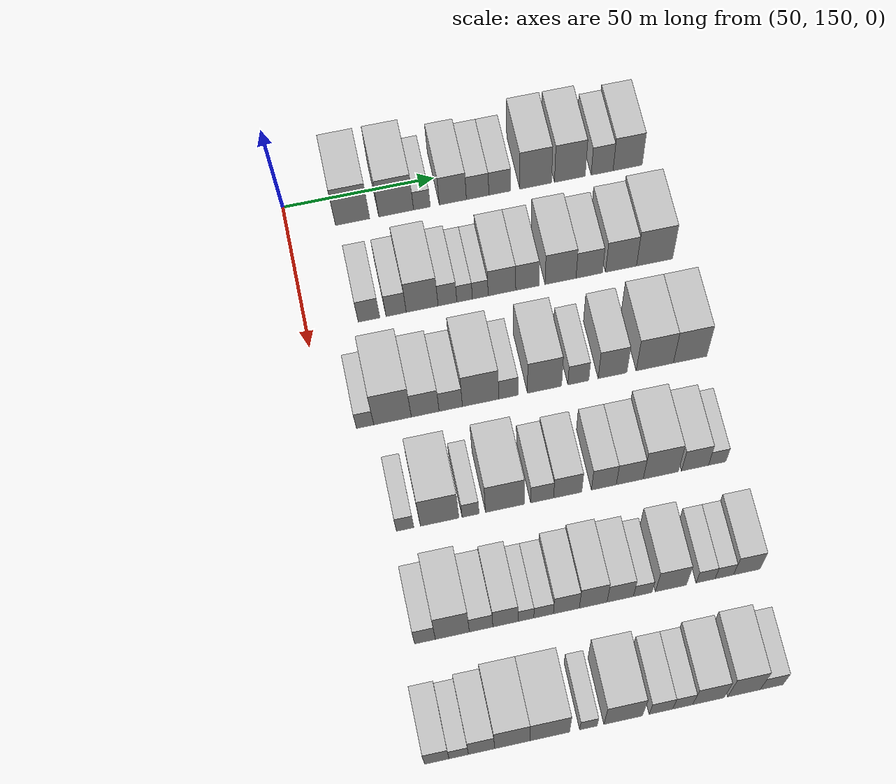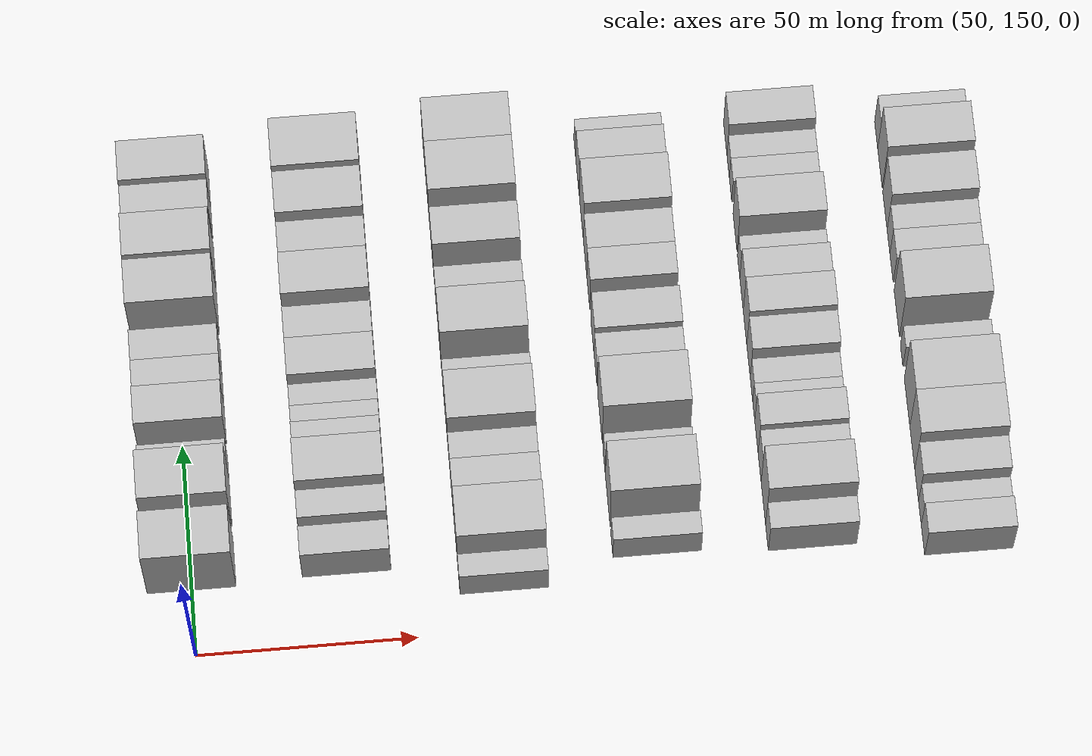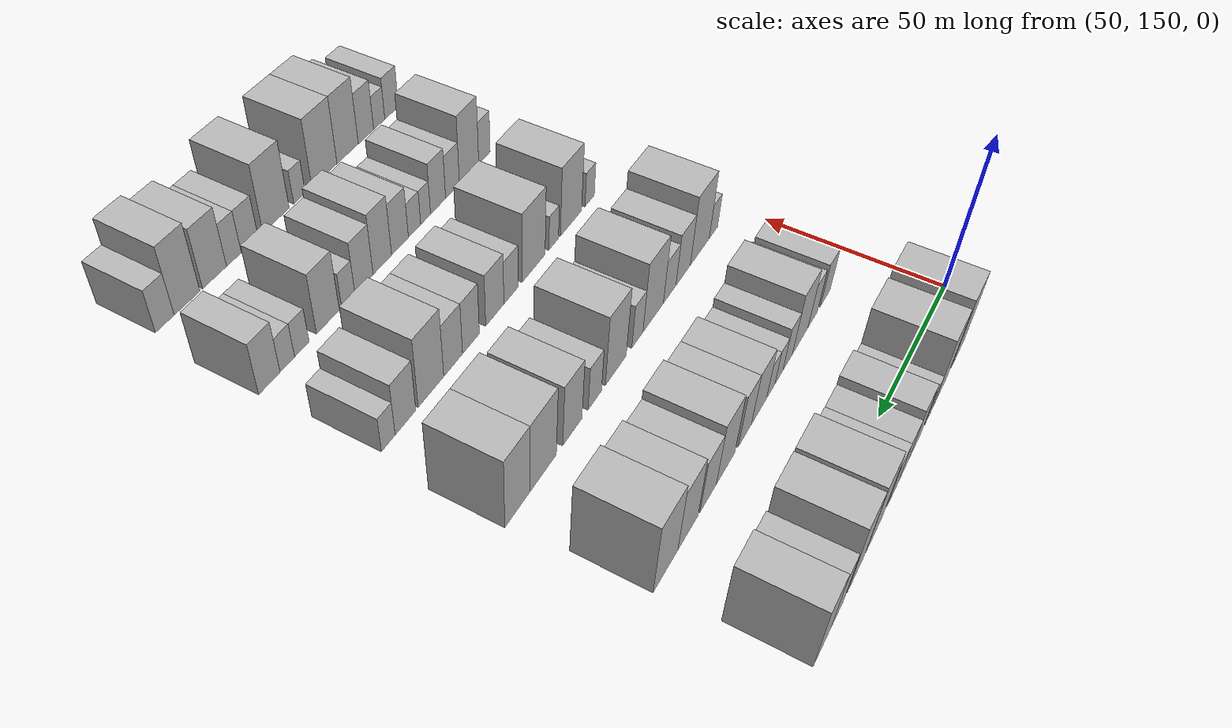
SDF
<sdf version="1.6">
 <world name="default">
  <model name="building_82">
   <static>1</static>
   <pose>50.0000 171.2162 0 0.000000 0.000000 0.000000</pose>
   <link name="link">
    <pose>0 0 12.00 0 0 0</pose>
    <collision name="collision"><geometry><box><size>20.0000 11.2243 24.0000</size></box></geometry></collision>
    <visual name="visual">
     <cast_shadows>0</cast_shadows>
     <geometry><box><size>20.0000 11.2243 24.0000</size></box></geometry>
     <material>
      <script>
       <uri>model://HANNAS_wall/materials/scripts</uri>
       <uri>model://HANNAS_wall/materials/textures</uri>
       <name>vrc/HANNAS_wall</name>
      </script>
     </material>
    </visual>
   </link>
  </model>
  <model name="building_83">
   <static>1</static>
   <pose>50.0000 185.5614 0 0.000000 0.000000 0.000000</pose>
   <link name="link">
    <pose>0 0 12.00 0 0 0</pose>
    <collision name="collision"><geometry><box><size>20.0000 11.4661 24.0000</size></box></geometry></collision>
    <visual name="visual">
     <cast_shadows>0</cast_shadows>
     <geometry><box><size>20.0000 11.4661 24.0000</size></box></geometry>
     <material>
      <script>
       <uri>model://HANNAS_wall/materials/scripts</uri>
       <uri>model://HANNAS_wall/materials/textures</uri>
       <name>vrc/HANNAS_wall</name>
      </script>
     </material>
    </visual>
   </link>
  </model>
  <model name="building_84">
   <static>1</static>
   <pose>50.0000 194.0511 0 0.000000 0.000000 0.000000</pose>
   <link name="link">
    <pose>0 0 6.00 0 0 0</pose>
    <collision name="collision"><geometry><box><size>20.0000 5.5132 12.0000</size></box></geometry></collision>
    <visual name="visual">
     <cast_shadows>0</cast_shadows>
     <geometry><box><size>20.0000 5.5132 12.0000</size></box></geometry>
     <material>
      <script>
       <uri>model://HANNAS_wall/materials/scripts</uri>
       <uri>model://HANNAS_wall/materials/textures</uri>
       <name>vrc/HANNAS_wall</name>
      </script>
     </material>
    </visual>
   </link>
  </model>
  <model name="building_85">
   <static>1</static>
   <pose>50.0000 204.2887 0 0.000000 0.000000 0.000000</pose>
   <link name="link">
    <pose>0 0 9.00 0 0 0</pose>
    <collision name="collision"><geometry><box><size>20.0000 8.9622 18.0000</size></box></geometry></collision>
    <visual name="visual">
     <cast_shadows>0</cast_shadows>
     <geometry><box><size>20.0000 8.9622 18.0000</size></box></geometry>
     <material>
      <script>
       <uri>model://HANNAS_wall/materials/scripts</uri>
       <uri>model://HANNAS_wall/materials/textures</uri>
       <name>vrc/HANNAS_wall</name>
      </script>
     </material>
    </visual>
   </link>
  </model>
  <model name="building_86">
   <static>1</static>
   <pose>50.0000 212.4985 0 0.000000 0.000000 0.000000</pose>
   <link name="link">
    <pose>0 0 7.50 0 0 0</pose>
    <collision name="collision"><geometry><box><size>20.0000 7.4574 15.0000</size></box></geometry></collision>
    <visual name="visual">
     <cast_shadows>0</cast_shadows>
     <geometry><box><size>20.0000 7.4574 15.0000</size></box></geometry>
     <material>
      <script>
       <uri>model://HANNAS_wall/materials/scripts</uri>
       <uri>model://HANNAS_wall/materials/textures</uri>
       <name>vrc/HANNAS_wall</name>
      </script>
     </material>
    </visual>
   </link>
  </model>
  <model name="building_87">
   <static>1</static>
   <pose>50.0000 219.8752 0 0.000000 0.000000 0.000000</pose>
   <link name="link">
    <pose>0 0 7.50 0 0 0</pose>
    <collision name="collision"><geometry><box><size>20.0000 7.2960 15.0000</size></box></geometry></collision>
    <visual name="visual">
     <cast_shadows>0</cast_shadows>
     <geometry><box><size>20.0000 7.2960 15.0000</size></box></geometry>
     <material>
      <script>
       <uri>model://HANNAS_wall/materials/scripts</uri>
       <uri>model://HANNAS_wall/materials/textures</uri>
       <name>vrc/HANNAS_wall</name>
      </script>
     </material>
    </visual>
   </link>
  </model>
  <model name="building_88">
   <static>1</static>
   <pose>50.0000 231.8130 0 0.000000 0.000000 0.000000</pose>
   <link name="link">
    <pose>0 0 12.00 0 0 0</pose>
    <collision name="collision"><geometry><box><size>20.0000 10.5794 24.0000</size></box></geometry></collision>
    <visual name="visual">
     <cast_shadows>0</cast_shadows>
     <geometry><box><size>20.0000 10.5794 24.0000</size></box></geometry>
     <material>
      <script>
       <uri>model://HANNAS_wall/materials/scripts</uri>
       <uri>model://HANNAS_wall/materials/textures</uri>
       <name>vrc/HANNAS_wall</name>
      </script>
     </material>
    </visual>
   </link>
  </model>
  <model name="building_89">
   <static>1</static>
   <pose>50.0000 243.2469 0 0.000000 0.000000 0.000000</pose>
   <link name="link">
    <pose>0 0 12.00 0 0 0</pose>
    <collision name="collision"><geometry><box><size>20.0000 10.2885 24.0000</size></box></geometry></collision>
    <visual name="visual">
     <cast_shadows>0</cast_shadows>
     <geometry><box><size>20.0000 10.2885 24.0000</size></box></geometry>
     <material>
      <script>
       <uri>model://HANNAS_wall/materials/scripts</uri>
       <uri>model://HANNAS_wall/materials/textures</uri>
       <name>vrc/HANNAS_wall</name>
      </script>
     </material>
    </visual>
   </link>
  </model>
  <model name="building_90">
   <static>1</static>
   <pose>50.0000 254.0702 0 0.000000 0.000000 0.000000</pose>
   <link name="link">
    <pose>0 0 9.00 0 0 0</pose>
    <collision name="collision"><geometry><box><size>20.0000 7.3580 18.0000</size></box></geometry></collision>
    <visual name="visual">
     <cast_shadows>0</cast_shadows>
     <geometry><box><size>20.0000 7.3580 18.0000</size></box></geometry>
     <material>
      <script>
       <uri>model://HANNAS_wall/materials/scripts</uri>
       <uri>model://HANNAS_wall/materials/textures</uri>
       <name>vrc/HANNAS_wall</name>
      </script>
     </material>
    </visual>
   </link>
  </model>
  <model name="building_91">
   <static>1</static>
   <pose>50.0000 262.6418 0 0.000000 0.000000 0.000000</pose>
   <link name="link">
    <pose>0 0 10.50 0 0 0</pose>
    <collision name="collision"><geometry><box><size>20.0000 9.7854 21.0000</size></box></geometry></collision>
    <visual name="visual">
     <cast_shadows>0</cast_shadows>
     <geometry><box><size>20.0000 9.7854 21.0000</size></box></geometry>
     <material>
      <script>
       <uri>model://HANNAS_wall/materials/scripts</uri>
       <uri>model://HANNAS_wall/materials/textures</uri>
       <name>vrc/HANNAS_wall</name>
      </script>
     </material>
    </visual>
   </link>
  </model>
  <model name="building_208">
   <static>1</static>
   <pose>85.0000 170.0266 0 0.000000 0.000000 0.000000</pose>
   <link name="link">
    <pose>0 0 7.50 0 0 0</pose>
    <collision name="collision"><geometry><box><size>20.0000 6.9414 15.0000</size></box></geometry></collision>
    <visual name="visual">
     <cast_shadows>0</cast_shadows>
     <geometry><box><size>20.0000 6.9414 15.0000</size></box></geometry>
     <material>
      <script>
       <uri>model://HANNAS_wall/materials/scripts</uri>
       <uri>model://HANNAS_wall/materials/textures</uri>
       <name>vrc/HANNAS_wall</name>
      </script>
     </material>
    </visual>
   </link>
  </model>
  <model name="building_209">
   <static>1</static>
   <pose>85.0000 178.7597 0 0.000000 0.000000 0.000000</pose>
   <link name="link">
    <pose>0 0 7.50 0 0 0</pose>
    <collision name="collision"><geometry><box><size>20.0000 6.5249 15.0000</size></box></geometry></collision>
    <visual name="visual">
     <cast_shadows>0</cast_shadows>
     <geometry><box><size>20.0000 6.5249 15.0000</size></box></geometry>
     <material>
      <script>
       <uri>model://HANNAS_wall/materials/scripts</uri>
       <uri>model://HANNAS_wall/materials/textures</uri>
       <name>vrc/HANNAS_wall</name>
      </script>
     </material>
    </visual>
   </link>
  </model>
  <model name="building_210">
   <static>1</static>
   <pose>85.0000 187.1684 0 0.000000 0.000000 0.000000</pose>
   <link name="link">
    <pose>0 0 10.50 0 0 0</pose>
    <collision name="collision"><geometry><box><size>20.0000 10.2925 21.0000</size></box></geometry></collision>
    <visual name="visual">
     <cast_shadows>0</cast_shadows>
     <geometry><box><size>20.0000 10.2925 21.0000</size></box></geometry>
     <material>
      <script>
       <uri>model://HANNAS_wall/materials/scripts</uri>
       <uri>model://HANNAS_wall/materials/textures</uri>
       <name>vrc/HANNAS_wall</name>
      </script>
     </material>
    </visual>
   </link>
  </model>
  <model name="building_211">
   <static>1</static>
   <pose>85.0000 195.3387 0 0.000000 0.000000 0.000000</pose>
   <link name="link">
    <pose>0 0 7.50 0 0 0</pose>
    <collision name="collision"><geometry><box><size>20.0000 6.0480 15.0000</size></box></geometry></collision>
    <visual name="visual">
     <cast_shadows>0</cast_shadows>
     <geometry><box><size>20.0000 6.0480 15.0000</size></box></geometry>
     <material>
      <script>
       <uri>model://HANNAS_wall/materials/scripts</uri>
       <uri>model://HANNAS_wall/materials/textures</uri>
       <name>vrc/HANNAS_wall</name>
      </script>
     </material>
    </visual>
   </link>
  </model>
  <model name="building_212">
   <static>1</static>
   <pose>85.0000 200.8754 0 0.000000 0.000000 0.000000</pose>
   <link name="link">
    <pose>0 0 6.00 0 0 0</pose>
    <collision name="collision"><geometry><box><size>20.0000 5.0254 12.0000</size></box></geometry></collision>
    <visual name="visual">
     <cast_shadows>0</cast_shadows>
     <geometry><box><size>20.0000 5.0254 12.0000</size></box></geometry>
     <material>
      <script>
       <uri>model://HANNAS_wall/materials/scripts</uri>
       <uri>model://HANNAS_wall/materials/textures</uri>
       <name>vrc/HANNAS_wall</name>
      </script>
     </material>
    </visual>
   </link>
  </model>
  <model name="building_213">
   <static>1</static>
   <pose>85.0000 205.9501 0 0.000000 0.000000 0.000000</pose>
   <link name="link">
    <pose>0 0 6.00 0 0 0</pose>
    <collision name="collision"><geometry><box><size>20.0000 5.1241 12.0000</size></box></geometry></collision>
    <visual name="visual">
     <cast_shadows>0</cast_shadows>
     <geometry><box><size>20.0000 5.1241 12.0000</size></box></geometry>
     <material>
      <script>
       <uri>model://HANNAS_wall/materials/scripts</uri>
       <uri>model://HANNAS_wall/materials/textures</uri>
       <name>vrc/HANNAS_wall</name>
      </script>
     </material>
    </visual>
   </link>
  </model>
  <model name="building_214">
   <static>1</static>
   <pose>85.0000 212.9996 0 0.000000 0.000000 0.000000</pose>
   <link name="link">
    <pose>0 0 9.00 0 0 0</pose>
    <collision name="collision"><geometry><box><size>20.0000 8.9749 18.0000</size></box></geometry></collision>
    <visual name="visual">
     <cast_shadows>0</cast_shadows>
     <geometry><box><size>20.0000 8.9749 18.0000</size></box></geometry>
     <material>
      <script>
       <uri>model://HANNAS_wall/materials/scripts</uri>
       <uri>model://HANNAS_wall/materials/textures</uri>
       <name>vrc/HANNAS_wall</name>
      </script>
     </material>
    </visual>
   </link>
  </model>
  <model name="building_215">
   <static>1</static>
   <pose>85.0000 221.2594 0 0.000000 0.000000 0.000000</pose>
   <link name="link">
    <pose>0 0 9.00 0 0 0</pose>
    <collision name="collision"><geometry><box><size>20.0000 7.5448 18.0000</size></box></geometry></collision>
    <visual name="visual">
     <cast_shadows>0</cast_shadows>
     <geometry><box><size>20.0000 7.5448 18.0000</size></box></geometry>
     <material>
      <script>
       <uri>model://HANNAS_wall/materials/scripts</uri>
       <uri>model://HANNAS_wall/materials/textures</uri>
       <name>vrc/HANNAS_wall</name>
      </script>
     </material>
    </visual>
   </link>
  </model>
  <model name="building_216">
   <static>1</static>
   <pose>85.0000 232.0993 0 0.000000 0.000000 0.000000</pose>
   <link name="link">
    <pose>0 0 10.50 0 0 0</pose>
    <collision name="collision"><geometry><box><size>20.0000 10.1349 21.0000</size></box></geometry></collision>
    <visual name="visual">
     <cast_shadows>0</cast_shadows>
     <geometry><box><size>20.0000 10.1349 21.0000</size></box></geometry>
     <material>
      <script>
       <uri>model://HANNAS_wall/materials/scripts</uri>
       <uri>model://HANNAS_wall/materials/textures</uri>
       <name>vrc/HANNAS_wall</name>
      </script>
     </material>
    </visual>
   </link>
  </model>
  <model name="building_217">
   <static>1</static>
   <pose>85.0000 241.4957 0 0.000000 0.000000 0.000000</pose>
   <link name="link">
    <pose>0 0 9.00 0 0 0</pose>
    <collision name="collision"><geometry><box><size>20.0000 8.6579 18.0000</size></box></geometry></collision>
    <visual name="visual">
     <cast_shadows>0</cast_shadows>
     <geometry><box><size>20.0000 8.6579 18.0000</size></box></geometry>
     <material>
      <script>
       <uri>model://HANNAS_wall/materials/scripts</uri>
       <uri>model://HANNAS_wall/materials/textures</uri>
       <name>vrc/HANNAS_wall</name>
      </script>
     </material>
    </visual>
   </link>
  </model>
  <model name="building_218">
   <static>1</static>
   <pose>85.0000 251.9202 0 0.000000 0.000000 0.000000</pose>
   <link name="link">
    <pose>0 0 10.50 0 0 0</pose>
    <collision name="collision"><geometry><box><size>20.0000 10.1911 21.0000</size></box></geometry></collision>
    <visual name="visual">
     <cast_shadows>0</cast_shadows>
     <geometry><box><size>20.0000 10.1911 21.0000</size></box></geometry>
     <material>
      <script>
       <uri>model://HANNAS_wall/materials/scripts</uri>
       <uri>model://HANNAS_wall/materials/textures</uri>
       <name>vrc/HANNAS_wall</name>
      </script>
     </material>
    </visual>
   </link>
  </model>
  <model name="building_219">
   <static>1</static>
   <pose>85.0000 262.9612 0 0.000000 0.000000 0.000000</pose>
   <link name="link">
    <pose>0 0 12.00 0 0 0</pose>
    <collision name="collision"><geometry><box><size>20.0000 11.8909 24.0000</size></box></geometry></collision>
    <visual name="visual">
     <cast_shadows>0</cast_shadows>
     <geometry><box><size>20.0000 11.8909 24.0000</size></box></geometry>
     <material>
      <script>
       <uri>model://HANNAS_wall/materials/scripts</uri>
       <uri>model://HANNAS_wall/materials/textures</uri>
       <name>vrc/HANNAS_wall</name>
      </script>
     </material>
    </visual>
   </link>
  </model>
  <model name="building_334">
   <static>1</static>
   <pose>120.0000 162.2347 0 0.000000 0.000000 0.000000</pose>
   <link name="link">
    <pose>0 0 6.00 0 0 0</pose>
    <collision name="collision"><geometry><box><size>20.0000 5.4271 12.0000</size></box></geometry></collision>
    <visual name="visual">
     <cast_shadows>0</cast_shadows>
     <geometry><box><size>20.0000 5.4271 12.0000</size></box></geometry>
     <material>
      <script>
       <uri>model://HANNAS_wall/materials/scripts</uri>
       <uri>model://HANNAS_wall/materials/textures</uri>
       <name>vrc/HANNAS_wall</name>
      </script>
     </material>
    </visual>
   </link>
  </model>
  <model name="building_335">
   <static>1</static>
   <pose>120.0000 170.8487 0 0.000000 0.000000 0.000000</pose>
   <link name="link">
    <pose>0 0 12.00 0 0 0</pose>
    <collision name="collision"><geometry><box><size>20.0000 11.8010 24.0000</size></box></geometry></collision>
    <visual name="visual">
     <cast_shadows>0</cast_shadows>
     <geometry><box><size>20.0000 11.8010 24.0000</size></box></geometry>
     <material>
      <script>
       <uri>model://HANNAS_wall/materials/scripts</uri>
       <uri>model://HANNAS_wall/materials/textures</uri>
       <name>vrc/HANNAS_wall</name>
      </script>
     </material>
    </visual>
   </link>
  </model>
  <model name="building_336">
   <static>1</static>
   <pose>120.0000 181.1348 0 0.000000 0.000000 0.000000</pose>
   <link name="link">
    <pose>0 0 9.00 0 0 0</pose>
    <collision name="collision"><geometry><box><size>20.0000 8.7712 18.0000</size></box></geometry></collision>
    <visual name="visual">
     <cast_shadows>0</cast_shadows>
     <geometry><box><size>20.0000 8.7712 18.0000</size></box></geometry>
     <material>
      <script>
       <uri>model://HANNAS_wall/materials/scripts</uri>
       <uri>model://HANNAS_wall/materials/textures</uri>
       <name>vrc/HANNAS_wall</name>
      </script>
     </material>
    </visual>
   </link>
  </model>
  <model name="building_337">
   <static>1</static>
   <pose>120.0000 189.1979 0 0.000000 0.000000 0.000000</pose>
   <link name="link">
    <pose>0 0 7.50 0 0 0</pose>
    <collision name="collision"><geometry><box><size>20.0000 7.3550 15.0000</size></box></geometry></collision>
    <visual name="visual">
     <cast_shadows>0</cast_shadows>
     <geometry><box><size>20.0000 7.3550 15.0000</size></box></geometry>
     <material>
      <script>
       <uri>model://HANNAS_wall/materials/scripts</uri>
       <uri>model://HANNAS_wall/materials/textures</uri>
       <name>vrc/HANNAS_wall</name>
      </script>
     </material>
    </visual>
   </link>
  </model>
  <model name="building_338">
   <static>1</static>
   <pose>120.0000 198.6452 0 0.000000 0.000000 0.000000</pose>
   <link name="link">
    <pose>0 0 12.00 0 0 0</pose>
    <collision name="collision"><geometry><box><size>20.0000 11.5395 24.0000</size></box></geometry></collision>
    <visual name="visual">
     <cast_shadows>0</cast_shadows>
     <geometry><box><size>20.0000 11.5395 24.0000</size></box></geometry>
     <material>
      <script>
       <uri>model://HANNAS_wall/materials/scripts</uri>
       <uri>model://HANNAS_wall/materials/textures</uri>
       <name>vrc/HANNAS_wall</name>
      </script>
     </material>
    </visual>
   </link>
  </model>
  <model name="building_339">
   <static>1</static>
   <pose>120.0000 207.4581 0 0.000000 0.000000 0.000000</pose>
   <link name="link">
    <pose>0 0 7.50 0 0 0</pose>
    <collision name="collision"><geometry><box><size>20.0000 6.0863 15.0000</size></box></geometry></collision>
    <visual name="visual">
     <cast_shadows>0</cast_shadows>
     <geometry><box><size>20.0000 6.0863 15.0000</size></box></geometry>
     <material>
      <script>
       <uri>model://HANNAS_wall/materials/scripts</uri>
       <uri>model://HANNAS_wall/materials/textures</uri>
       <name>vrc/HANNAS_wall</name>
      </script>
     </material>
    </visual>
   </link>
  </model>
  <model name="building_340">
   <static>1</static>
   <pose>120.0000 218.9475 0 0.000000 0.000000 0.000000</pose>
   <link name="link">
    <pose>0 0 12.00 0 0 0</pose>
    <collision name="collision"><geometry><box><size>20.0000 10.8926 24.0000</size></box></geometry></collision>
    <visual name="visual">
     <cast_shadows>0</cast_shadows>
     <geometry><box><size>20.0000 10.8926 24.0000</size></box></geometry>
     <material>
      <script>
       <uri>model://HANNAS_wall/materials/scripts</uri>
       <uri>model://HANNAS_wall/materials/textures</uri>
       <name>vrc/HANNAS_wall</name>
      </script>
     </material>
    </visual>
   </link>
  </model>
  <model name="building_341">
   <static>1</static>
   <pose>120.0000 229.7397 0 0.000000 0.000000 0.000000</pose>
   <link name="link">
    <pose>0 0 7.50 0 0 0</pose>
    <collision name="collision"><geometry><box><size>20.0000 6.6917 15.0000</size></box></geometry></collision>
    <visual name="visual">
     <cast_shadows>0</cast_shadows>
     <geometry><box><size>20.0000 6.6917 15.0000</size></box></geometry>
     <material>
      <script>
       <uri>model://HANNAS_wall/materials/scripts</uri>
       <uri>model://HANNAS_wall/materials/textures</uri>
       <name>vrc/HANNAS_wall</name>
      </script>
     </material>
    </visual>
   </link>
  </model>
  <model name="building_342">
   <static>1</static>
   <pose>120.0000 240.6907 0 0.000000 0.000000 0.000000</pose>
   <link name="link">
    <pose>0 0 10.50 0 0 0</pose>
    <collision name="collision"><geometry><box><size>20.0000 9.2102 21.0000</size></box></geometry></collision>
    <visual name="visual">
     <cast_shadows>0</cast_shadows>
     <geometry><box><size>20.0000 9.2102 21.0000</size></box></geometry>
     <material>
      <script>
       <uri>model://HANNAS_wall/materials/scripts</uri>
       <uri>model://HANNAS_wall/materials/textures</uri>
       <name>vrc/HANNAS_wall</name>
      </script>
     </material>
    </visual>
   </link>
  </model>
  <model name="building_343">
   <static>1</static>
   <pose>120.0000 254.2796 0 0.000000 0.000000 0.000000</pose>
   <link name="link">
    <pose>0 0 12.00 0 0 0</pose>
    <collision name="collision"><geometry><box><size>20.0000 11.9676 24.0000</size></box></geometry></collision>
    <visual name="visual">
     <cast_shadows>0</cast_shadows>
     <geometry><box><size>20.0000 11.9676 24.0000</size></box></geometry>
     <material>
      <script>
       <uri>model://HANNAS_wall/materials/scripts</uri>
       <uri>model://HANNAS_wall/materials/textures</uri>
       <name>vrc/HANNAS_wall</name>
      </script>
     </material>
    </visual>
   </link>
  </model>
  <model name="building_344">
   <static>1</static>
   <pose>120.0000 265.6564 0 0.000000 0.000000 0.000000</pose>
   <link name="link">
    <pose>0 0 12.00 0 0 0</pose>
    <collision name="collision"><geometry><box><size>20.0000 10.7861 24.0000</size></box></geometry></collision>
    <visual name="visual">
     <cast_shadows>0</cast_shadows>
     <geometry><box><size>20.0000 10.7861 24.0000</size></box></geometry>
     <material>
      <script>
       <uri>model://HANNAS_wall/materials/scripts</uri>
       <uri>model://HANNAS_wall/materials/textures</uri>
       <name>vrc/HANNAS_wall</name>
      </script>
     </material>
    </visual>
   </link>
  </model>
  <model name="building_464">
   <static>1</static>
   <pose>155.0000 167.9570 0 0.000000 0.000000 0.000000</pose>
   <link name="link">
    <pose>0 0 6.00 0 0 0</pose>
    <collision name="collision"><geometry><box><size>20.0000 5.3434 12.0000</size></box></geometry></collision>
    <visual name="visual">
     <cast_shadows>0</cast_shadows>
     <geometry><box><size>20.0000 5.3434 12.0000</size></box></geometry>
     <material>
      <script>
       <uri>model://HANNAS_wall/materials/scripts</uri>
       <uri>model://HANNAS_wall/materials/textures</uri>
       <name>vrc/HANNAS_wall</name>
      </script>
     </material>
    </visual>
   </link>
  </model>
  <model name="building_465">
   <static>1</static>
   <pose>155.0000 178.5574 0 0.000000 0.000000 0.000000</pose>
   <link name="link">
    <pose>0 0 12.00 0 0 0</pose>
    <collision name="collision"><geometry><box><size>20.0000 11.8574 24.0000</size></box></geometry></collision>
    <visual name="visual">
     <cast_shadows>0</cast_shadows>
     <geometry><box><size>20.0000 11.8574 24.0000</size></box></geometry>
     <material>
      <script>
       <uri>model://HANNAS_wall/materials/scripts</uri>
       <uri>model://HANNAS_wall/materials/textures</uri>
       <name>vrc/HANNAS_wall</name>
      </script>
     </material>
    </visual>
   </link>
  </model>
  <model name="building_466">
   <static>1</static>
   <pose>155.0000 188.1067 0 0.000000 0.000000 0.000000</pose>
   <link name="link">
    <pose>0 0 6.00 0 0 0</pose>
    <collision name="collision"><geometry><box><size>20.0000 5.2412 12.0000</size></box></geometry></collision>
    <visual name="visual">
     <cast_shadows>0</cast_shadows>
     <geometry><box><size>20.0000 5.2412 12.0000</size></box></geometry>
     <material>
      <script>
       <uri>model://HANNAS_wall/materials/scripts</uri>
       <uri>model://HANNAS_wall/materials/textures</uri>
       <name>vrc/HANNAS_wall</name>
      </script>
     </material>
    </visual>
   </link>
  </model>
  <model name="building_467">
   <static>1</static>
   <pose>155.0000 198.7268 0 0.000000 0.000000 0.000000</pose>
   <link name="link">
    <pose>0 0 12.00 0 0 0</pose>
    <collision name="collision"><geometry><box><size>20.0000 11.9990 24.0000</size></box></geometry></collision>
    <visual name="visual">
     <cast_shadows>0</cast_shadows>
     <geometry><box><size>20.0000 11.9990 24.0000</size></box></geometry>
     <material>
      <script>
       <uri>model://HANNAS_wall/materials/scripts</uri>
       <uri>model://HANNAS_wall/materials/textures</uri>
       <name>vrc/HANNAS_wall</name>
      </script>
     </material>
    </visual>
   </link>
  </model>
  <model name="building_468">
   <static>1</static>
   <pose>155.0000 210.2907 0 0.000000 0.000000 0.000000</pose>
   <link name="link">
    <pose>0 0 7.50 0 0 0</pose>
    <collision name="collision"><geometry><box><size>20.0000 7.1289 15.0000</size></box></geometry></collision>
    <visual name="visual">
     <cast_shadows>0</cast_shadows>
     <geometry><box><size>20.0000 7.1289 15.0000</size></box></geometry>
     <material>
      <script>
       <uri>model://HANNAS_wall/materials/scripts</uri>
       <uri>model://HANNAS_wall/materials/textures</uri>
       <name>vrc/HANNAS_wall</name>
      </script>
     </material>
    </visual>
   </link>
  </model>
  <model name="building_469">
   <static>1</static>
   <pose>155.0000 218.2522 0 0.000000 0.000000 0.000000</pose>
   <link name="link">
    <pose>0 0 9.00 0 0 0</pose>
    <collision name="collision"><geometry><box><size>20.0000 8.7942 18.0000</size></box></geometry></collision>
    <visual name="visual">
     <cast_shadows>0</cast_shadows>
     <geometry><box><size>20.0000 8.7942 18.0000</size></box></geometry>
     <material>
      <script>
       <uri>model://HANNAS_wall/materials/scripts</uri>
       <uri>model://HANNAS_wall/materials/textures</uri>
       <name>vrc/HANNAS_wall</name>
      </script>
     </material>
    </visual>
   </link>
  </model>
  <model name="building_470">
   <static>1</static>
   <pose>155.0000 229.5432 0 0.000000 0.000000 0.000000</pose>
   <link name="link">
    <pose>0 0 9.00 0 0 0</pose>
    <collision name="collision"><geometry><box><size>20.0000 7.7878 18.0000</size></box></geometry></collision>
    <visual name="visual">
     <cast_shadows>0</cast_shadows>
     <geometry><box><size>20.0000 7.7878 18.0000</size></box></geometry>
     <material>
      <script>
       <uri>model://HANNAS_wall/materials/scripts</uri>
       <uri>model://HANNAS_wall/materials/textures</uri>
       <name>vrc/HANNAS_wall</name>
      </script>
     </material>
    </visual>
   </link>
  </model>
  <model name="building_471">
   <static>1</static>
   <pose>155.0000 237.6557 0 0.000000 0.000000 0.000000</pose>
   <link name="link">
    <pose>0 0 9.00 0 0 0</pose>
    <collision name="collision"><geometry><box><size>20.0000 8.4373 18.0000</size></box></geometry></collision>
    <visual name="visual">
     <cast_shadows>0</cast_shadows>
     <geometry><box><size>20.0000 8.4373 18.0000</size></box></geometry>
     <material>
      <script>
       <uri>model://HANNAS_wall/materials/scripts</uri>
       <uri>model://HANNAS_wall/materials/textures</uri>
       <name>vrc/HANNAS_wall</name>
      </script>
     </material>
    </visual>
   </link>
  </model>
  <model name="building_472">
   <static>1</static>
   <pose>155.0000 247.3996 0 0.000000 0.000000 0.000000</pose>
   <link name="link">
    <pose>0 0 12.00 0 0 0</pose>
    <collision name="collision"><geometry><box><size>20.0000 11.0504 24.0000</size></box></geometry></collision>
    <visual name="visual">
     <cast_shadows>0</cast_shadows>
     <geometry><box><size>20.0000 11.0504 24.0000</size></box></geometry>
     <material>
      <script>
       <uri>model://HANNAS_wall/materials/scripts</uri>
       <uri>model://HANNAS_wall/materials/textures</uri>
       <name>vrc/HANNAS_wall</name>
      </script>
     </material>
    </visual>
   </link>
  </model>
  <model name="building_473">
   <static>1</static>
   <pose>155.0000 258.1891 0 0.000000 0.000000 0.000000</pose>
   <link name="link">
    <pose>0 0 9.00 0 0 0</pose>
    <collision name="collision"><geometry><box><size>20.0000 8.5286 18.0000</size></box></geometry></collision>
    <visual name="visual">
     <cast_shadows>0</cast_shadows>
     <geometry><box><size>20.0000 8.5286 18.0000</size></box></geometry>
     <material>
      <script>
       <uri>model://HANNAS_wall/materials/scripts</uri>
       <uri>model://HANNAS_wall/materials/textures</uri>
       <name>vrc/HANNAS_wall</name>
      </script>
     </material>
    </visual>
   </link>
  </model>
  <model name="building_474">
   <static>1</static>
   <pose>155.0000 265.2137 0 0.000000 0.000000 0.000000</pose>
   <link name="link">
    <pose>0 0 6.00 0 0 0</pose>
    <collision name="collision"><geometry><box><size>20.0000 5.5206 12.0000</size></box></geometry></collision>
    <visual name="visual">
     <cast_shadows>0</cast_shadows>
     <geometry><box><size>20.0000 5.5206 12.0000</size></box></geometry>
     <material>
      <script>
       <uri>model://HANNAS_wall/materials/scripts</uri>
       <uri>model://HANNAS_wall/materials/textures</uri>
       <name>vrc/HANNAS_wall</name>
      </script>
     </material>
    </visual>
   </link>
  </model>
  <model name="building_595">
   <static>1</static>
   <pose>190.0000 167.0574 0 0.000000 0.000000 0.000000</pose>
   <link name="link">
    <pose>0 0 7.50 0 0 0</pose>
    <collision name="collision"><geometry><box><size>20.0000 6.2252 15.0000</size></box></geometry></collision>
    <visual name="visual">
     <cast_shadows>0</cast_shadows>
     <geometry><box><size>20.0000 6.2252 15.0000</size></box></geometry>
     <material>
      <script>
       <uri>model://HANNAS_wall/materials/scripts</uri>
       <uri>model://HANNAS_wall/materials/textures</uri>
       <name>vrc/HANNAS_wall</name>
      </script>
     </material>
    </visual>
   </link>
  </model>
  <model name="building_596">
   <static>1</static>
   <pose>190.0000 175.2744 0 0.000000 0.000000 0.000000</pose>
   <link name="link">
    <pose>0 0 12.00 0 0 0</pose>
    <collision name="collision"><geometry><box><size>20.0000 10.2089 24.0000</size></box></geometry></collision>
    <visual name="visual">
     <cast_shadows>0</cast_shadows>
     <geometry><box><size>20.0000 10.2089 24.0000</size></box></geometry>
     <material>
      <script>
       <uri>model://HANNAS_wall/materials/scripts</uri>
       <uri>model://HANNAS_wall/materials/textures</uri>
       <name>vrc/HANNAS_wall</name>
      </script>
     </material>
    </visual>
   </link>
  </model>
  <model name="building_597">
   <static>1</static>
   <pose>190.0000 183.9313 0 0.000000 0.000000 0.000000</pose>
   <link name="link">
    <pose>0 0 7.50 0 0 0</pose>
    <collision name="collision"><geometry><box><size>20.0000 7.1048 15.0000</size></box></geometry></collision>
    <visual name="visual">
     <cast_shadows>0</cast_shadows>
     <geometry><box><size>20.0000 7.1048 15.0000</size></box></geometry>
     <material>
      <script>
       <uri>model://HANNAS_wall/materials/scripts</uri>
       <uri>model://HANNAS_wall/materials/textures</uri>
       <name>vrc/HANNAS_wall</name>
      </script>
     </material>
    </visual>
   </link>
  </model>
  <model name="building_598">
   <static>1</static>
   <pose>190.0000 191.2690 0 0.000000 0.000000 0.000000</pose>
   <link name="link">
    <pose>0 0 9.00 0 0 0</pose>
    <collision name="collision"><geometry><box><size>20.0000 7.5705 18.0000</size></box></geometry></collision>
    <visual name="visual">
     <cast_shadows>0</cast_shadows>
     <geometry><box><size>20.0000 7.5705 18.0000</size></box></geometry>
     <material>
      <script>
       <uri>model://HANNAS_wall/materials/scripts</uri>
       <uri>model://HANNAS_wall/materials/textures</uri>
       <name>vrc/HANNAS_wall</name>
      </script>
     </material>
    </visual>
   </link>
  </model>
  <model name="building_599">
   <static>1</static>
   <pose>190.0000 197.4596 0 0.000000 0.000000 0.000000</pose>
   <link name="link">
    <pose>0 0 6.00 0 0 0</pose>
    <collision name="collision"><geometry><box><size>20.0000 4.8108 12.0000</size></box></geometry></collision>
    <visual name="visual">
     <cast_shadows>0</cast_shadows>
     <geometry><box><size>20.0000 4.8108 12.0000</size></box></geometry>
     <material>
      <script>
       <uri>model://HANNAS_wall/materials/scripts</uri>
       <uri>model://HANNAS_wall/materials/textures</uri>
       <name>vrc/HANNAS_wall</name>
      </script>
     </material>
    </visual>
   </link>
  </model>
  <model name="building_600">
   <static>1</static>
   <pose>190.0000 202.8351 0 0.000000 0.000000 0.000000</pose>
   <link name="link">
    <pose>0 0 6.00 0 0 0</pose>
    <collision name="collision"><geometry><box><size>20.0000 5.9404 12.0000</size></box></geometry></collision>
    <visual name="visual">
     <cast_shadows>0</cast_shadows>
     <geometry><box><size>20.0000 5.9404 12.0000</size></box></geometry>
     <material>
      <script>
       <uri>model://HANNAS_wall/materials/scripts</uri>
       <uri>model://HANNAS_wall/materials/textures</uri>
       <name>vrc/HANNAS_wall</name>
      </script>
     </material>
    </visual>
   </link>
  </model>
  <model name="building_601">
   <static>1</static>
   <pose>190.0000 209.7483 0 0.000000 0.000000 0.000000</pose>
   <link name="link">
    <pose>0 0 9.00 0 0 0</pose>
    <collision name="collision"><geometry><box><size>20.0000 7.8859 18.0000</size></box></geometry></collision>
    <visual name="visual">
     <cast_shadows>0</cast_shadows>
     <geometry><box><size>20.0000 7.8859 18.0000</size></box></geometry>
     <material>
      <script>
       <uri>model://HANNAS_wall/materials/scripts</uri>
       <uri>model://HANNAS_wall/materials/textures</uri>
       <name>vrc/HANNAS_wall</name>
      </script>
     </material>
    </visual>
   </link>
  </model>
  <model name="building_602">
   <static>1</static>
   <pose>190.0000 217.9079 0 0.000000 0.000000 0.000000</pose>
   <link name="link">
    <pose>0 0 10.50 0 0 0</pose>
    <collision name="collision"><geometry><box><size>20.0000 8.4334 21.0000</size></box></geometry></collision>
    <visual name="visual">
     <cast_shadows>0</cast_shadows>
     <geometry><box><size>20.0000 8.4334 21.0000</size></box></geometry>
     <material>
      <script>
       <uri>model://HANNAS_wall/materials/scripts</uri>
       <uri>model://HANNAS_wall/materials/textures</uri>
       <name>vrc/HANNAS_wall</name>
      </script>
     </material>
    </visual>
   </link>
  </model>
  <model name="building_603">
   <static>1</static>
   <pose>190.0000 226.1650 0 0.000000 0.000000 0.000000</pose>
   <link name="link">
    <pose>0 0 9.00 0 0 0</pose>
    <collision name="collision"><geometry><box><size>20.0000 8.0808 18.0000</size></box></geometry></collision>
    <visual name="visual">
     <cast_shadows>0</cast_shadows>
     <geometry><box><size>20.0000 8.0808 18.0000</size></box></geometry>
     <material>
      <script>
       <uri>model://HANNAS_wall/materials/scripts</uri>
       <uri>model://HANNAS_wall/materials/textures</uri>
       <name>vrc/HANNAS_wall</name>
      </script>
     </material>
    </visual>
   </link>
  </model>
  <model name="building_604">
   <static>1</static>
   <pose>190.0000 233.0634 0 0.000000 0.000000 0.000000</pose>
   <link name="link">
    <pose>0 0 6.00 0 0 0</pose>
    <collision name="collision"><geometry><box><size>20.0000 5.7160 12.0000</size></box></geometry></collision>
    <visual name="visual">
     <cast_shadows>0</cast_shadows>
     <geometry><box><size>20.0000 5.7160 12.0000</size></box></geometry>
     <material>
      <script>
       <uri>model://HANNAS_wall/materials/scripts</uri>
       <uri>model://HANNAS_wall/materials/textures</uri>
       <name>vrc/HANNAS_wall</name>
      </script>
     </material>
    </visual>
   </link>
  </model>
  <model name="building_605">
   <static>1</static>
   <pose>190.0000 241.6877 0 0.000000 0.000000 0.000000</pose>
   <link name="link">
    <pose>0 0 10.50 0 0 0</pose>
    <collision name="collision"><geometry><box><size>20.0000 9.5325 21.0000</size></box></geometry></collision>
    <visual name="visual">
     <cast_shadows>0</cast_shadows>
     <geometry><box><size>20.0000 9.5325 21.0000</size></box></geometry>
     <material>
      <script>
       <uri>model://HANNAS_wall/materials/scripts</uri>
       <uri>model://HANNAS_wall/materials/textures</uri>
       <name>vrc/HANNAS_wall</name>
      </script>
     </material>
    </visual>
   </link>
  </model>
  <model name="building_606">
   <static>1</static>
   <pose>190.0000 252.3608 0 0.000000 0.000000 0.000000</pose>
   <link name="link">
    <pose>0 0 6.00 0 0 0</pose>
    <collision name="collision"><geometry><box><size>20.0000 5.8139 12.0000</size></box></geometry></collision>
    <visual name="visual">
     <cast_shadows>0</cast_shadows>
     <geometry><box><size>20.0000 5.8139 12.0000</size></box></geometry>
     <material>
      <script>
       <uri>model://HANNAS_wall/materials/scripts</uri>
       <uri>model://HANNAS_wall/materials/textures</uri>
       <name>vrc/HANNAS_wall</name>
      </script>
     </material>
    </visual>
   </link>
  </model>
  <model name="building_607">
   <static>1</static>
   <pose>190.0000 258.1185 0 0.000000 0.000000 0.000000</pose>
   <link name="link">
    <pose>0 0 6.00 0 0 0</pose>
    <collision name="collision"><geometry><box><size>20.0000 5.7015 12.0000</size></box></geometry></collision>
    <visual name="visual">
     <cast_shadows>0</cast_shadows>
     <geometry><box><size>20.0000 5.7015 12.0000</size></box></geometry>
     <material>
      <script>
       <uri>model://HANNAS_wall/materials/scripts</uri>
       <uri>model://HANNAS_wall/materials/textures</uri>
       <name>vrc/HANNAS_wall</name>
      </script>
     </material>
    </visual>
   </link>
  </model>
  <model name="building_608">
   <static>1</static>
   <pose>190.0000 265.0682 0 0.000000 0.000000 0.000000</pose>
   <link name="link">
    <pose>0 0 9.00 0 0 0</pose>
    <collision name="collision"><geometry><box><size>20.0000 8.1979 18.0000</size></box></geometry></collision>
    <visual name="visual">
     <cast_shadows>0</cast_shadows>
     <geometry><box><size>20.0000 8.1979 18.0000</size></box></geometry>
     <material>
      <script>
       <uri>model://HANNAS_wall/materials/scripts</uri>
       <uri>model://HANNAS_wall/materials/textures</uri>
       <name>vrc/HANNAS_wall</name>
      </script>
     </material>
    </visual>
   </link>
  </model>
  <model name="building_723">
   <static>1</static>
   <pose>225.0000 163.4972 0 0.000000 0.000000 0.000000</pose>
   <link name="link">
    <pose>0 0 7.50 0 0 0</pose>
    <collision name="collision"><geometry><box><size>20.0000 7.1453 15.0000</size></box></geometry></collision>
    <visual name="visual">
     <cast_shadows>0</cast_shadows>
     <geometry><box><size>20.0000 7.1453 15.0000</size></box></geometry>
     <material>
      <script>
       <uri>model://HANNAS_wall/materials/scripts</uri>
       <uri>model://HANNAS_wall/materials/textures</uri>
       <name>vrc/HANNAS_wall</name>
      </script>
     </material>
    </visual>
   </link>
  </model>
  <model name="building_724">
   <static>1</static>
   <pose>225.0000 169.9224 0 0.000000 0.000000 0.000000</pose>
   <link name="link">
    <pose>0 0 6.00 0 0 0</pose>
    <collision name="collision"><geometry><box><size>20.0000 5.7051 12.0000</size></box></geometry></collision>
    <visual name="visual">
     <cast_shadows>0</cast_shadows>
     <geometry><box><size>20.0000 5.7051 12.0000</size></box></geometry>
     <material>
      <script>
       <uri>model://HANNAS_wall/materials/scripts</uri>
       <uri>model://HANNAS_wall/materials/textures</uri>
       <name>vrc/HANNAS_wall</name>
      </script>
     </material>
    </visual>
   </link>
  </model>
  <model name="building_725">
   <static>1</static>
   <pose>225.0000 176.6281 0 0.000000 0.000000 0.000000</pose>
   <link name="link">
    <pose>0 0 9.00 0 0 0</pose>
    <collision name="collision"><geometry><box><size>20.0000 7.7062 18.0000</size></box></geometry></collision>
    <visual name="visual">
     <cast_shadows>0</cast_shadows>
     <geometry><box><size>20.0000 7.7062 18.0000</size></box></geometry>
     <material>
      <script>
       <uri>model://HANNAS_wall/materials/scripts</uri>
       <uri>model://HANNAS_wall/materials/textures</uri>
       <name>vrc/HANNAS_wall</name>
      </script>
     </material>
    </visual>
   </link>
  </model>
  <model name="building_726">
   <static>1</static>
   <pose>225.0000 185.6662 0 0.000000 0.000000 0.000000</pose>
   <link name="link">
    <pose>0 0 12.00 0 0 0</pose>
    <collision name="collision"><geometry><box><size>20.0000 10.3701 24.0000</size></box></geometry></collision>
    <visual name="visual">
     <cast_shadows>0</cast_shadows>
     <geometry><box><size>20.0000 10.3701 24.0000</size></box></geometry>
     <material>
      <script>
       <uri>model://HANNAS_wall/materials/scripts</uri>
       <uri>model://HANNAS_wall/materials/textures</uri>
       <name>vrc/HANNAS_wall</name>
      </script>
     </material>
    </visual>
   </link>
  </model>
  <model name="building_727">
   <static>1</static>
   <pose>225.0000 196.7353 0 0.000000 0.000000 0.000000</pose>
   <link name="link">
    <pose>0 0 12.00 0 0 0</pose>
    <collision name="collision"><geometry><box><size>20.0000 11.7680 24.0000</size></box></geometry></collision>
    <visual name="visual">
     <cast_shadows>0</cast_shadows>
     <geometry><box><size>20.0000 11.7680 24.0000</size></box></geometry>
     <material>
      <script>
       <uri>model://HANNAS_wall/materials/scripts</uri>
       <uri>model://HANNAS_wall/materials/textures</uri>
       <name>vrc/HANNAS_wall</name>
      </script>
     </material>
    </visual>
   </link>
  </model>
  <model name="building_728">
   <static>1</static>
   <pose>225.0000 208.2193 0 0.000000 0.000000 0.000000</pose>
   <link name="link">
    <pose>0 0 6.00 0 0 0</pose>
    <collision name="collision"><geometry><box><size>20.0000 5.1999 12.0000</size></box></geometry></collision>
    <visual name="visual">
     <cast_shadows>0</cast_shadows>
     <geometry><box><size>20.0000 5.1999 12.0000</size></box></geometry>
     <material>
      <script>
       <uri>model://HANNAS_wall/materials/scripts</uri>
       <uri>model://HANNAS_wall/materials/textures</uri>
       <name>vrc/HANNAS_wall</name>
      </script>
     </material>
    </visual>
   </link>
  </model>
  <model name="building_729">
   <static>1</static>
   <pose>225.0000 218.5611 0 0.000000 0.000000 0.000000</pose>
   <link name="link">
    <pose>0 0 12.00 0 0 0</pose>
    <collision name="collision"><geometry><box><size>20.0000 11.4838 24.0000</size></box></geometry></collision>
    <visual name="visual">
     <cast_shadows>0</cast_shadows>
     <geometry><box><size>20.0000 11.4838 24.0000</size></box></geometry>
     <material>
      <script>
       <uri>model://HANNAS_wall/materials/scripts</uri>
       <uri>model://HANNAS_wall/materials/textures</uri>
       <name>vrc/HANNAS_wall</name>
      </script>
     </material>
    </visual>
   </link>
  </model>
  <model name="building_730">
   <static>1</static>
   <pose>225.0000 229.8184 0 0.000000 0.000000 0.000000</pose>
   <link name="link">
    <pose>0 0 7.50 0 0 0</pose>
    <collision name="collision"><geometry><box><size>20.0000 7.0307 15.0000</size></box></geometry></collision>
    <visual name="visual">
     <cast_shadows>0</cast_shadows>
     <geometry><box><size>20.0000 7.0307 15.0000</size></box></geometry>
     <material>
      <script>
       <uri>model://HANNAS_wall/materials/scripts</uri>
       <uri>model://HANNAS_wall/materials/textures</uri>
       <name>vrc/HANNAS_wall</name>
      </script>
     </material>
    </visual>
   </link>
  </model>
  <model name="building_731">
   <static>1</static>
   <pose>225.0000 236.3365 0 0.000000 0.000000 0.000000</pose>
   <link name="link">
    <pose>0 0 7.50 0 0 0</pose>
    <collision name="collision"><geometry><box><size>20.0000 6.0054 15.0000</size></box></geometry></collision>
    <visual name="visual">
     <cast_shadows>0</cast_shadows>
     <geometry><box><size>20.0000 6.0054 15.0000</size></box></geometry>
     <material>
      <script>
       <uri>model://HANNAS_wall/materials/scripts</uri>
       <uri>model://HANNAS_wall/materials/textures</uri>
       <name>vrc/HANNAS_wall</name>
      </script>
     </material>
    </visual>
   </link>
  </model>
  <model name="building_732">
   <static>1</static>
   <pose>225.0000 244.0985 0 0.000000 0.000000 0.000000</pose>
   <link name="link">
    <pose>0 0 10.50 0 0 0</pose>
    <collision name="collision"><geometry><box><size>20.0000 9.5187 21.0000</size></box></geometry></collision>
    <visual name="visual">
     <cast_shadows>0</cast_shadows>
     <geometry><box><size>20.0000 9.5187 21.0000</size></box></geometry>
     <material>
      <script>
       <uri>model://HANNAS_wall/materials/scripts</uri>
       <uri>model://HANNAS_wall/materials/textures</uri>
       <name>vrc/HANNAS_wall</name>
      </script>
     </material>
    </visual>
   </link>
  </model>
  <model name="building_733">
   <static>1</static>
   <pose>225.0000 254.7739 0 0.000000 0.000000 0.000000</pose>
   <link name="link">
    <pose>0 0 12.00 0 0 0</pose>
    <collision name="collision"><geometry><box><size>20.0000 9.8320 24.0000</size></box></geometry></collision>
    <visual name="visual">
     <cast_shadows>0</cast_shadows>
     <geometry><box><size>20.0000 9.8320 24.0000</size></box></geometry>
     <material>
      <script>
       <uri>model://HANNAS_wall/materials/scripts</uri>
       <uri>model://HANNAS_wall/materials/textures</uri>
       <name>vrc/HANNAS_wall</name>
      </script>
     </material>
    </visual>
   </link>
  </model>
  <model name="building_734">
   <static>1</static>
   <pose>225.0000 263.1649 0 0.000000 0.000000 0.000000</pose>
   <link name="link">
    <pose>0 0 7.50 0 0 0</pose>
    <collision name="collision"><geometry><box><size>20.0000 6.9500 15.0000</size></box></geometry></collision>
    <visual name="visual">
     <cast_shadows>0</cast_shadows>
     <geometry><box><size>20.0000 6.9500 15.0000</size></box></geometry>
     <material>
      <script>
       <uri>model://HANNAS_wall/materials/scripts</uri>
       <uri>model://HANNAS_wall/materials/textures</uri>
       <name>vrc/HANNAS_wall</name>
      </script>
     </material>
    </visual>
   </link>
  </model>
 </world>
</sdf>
